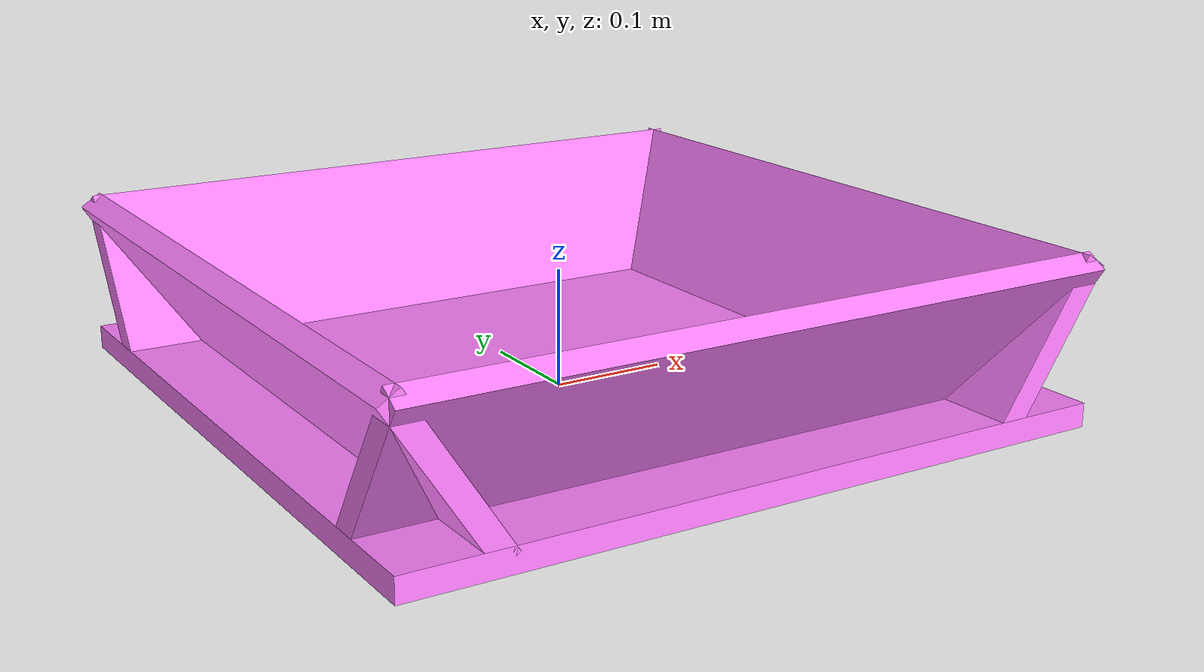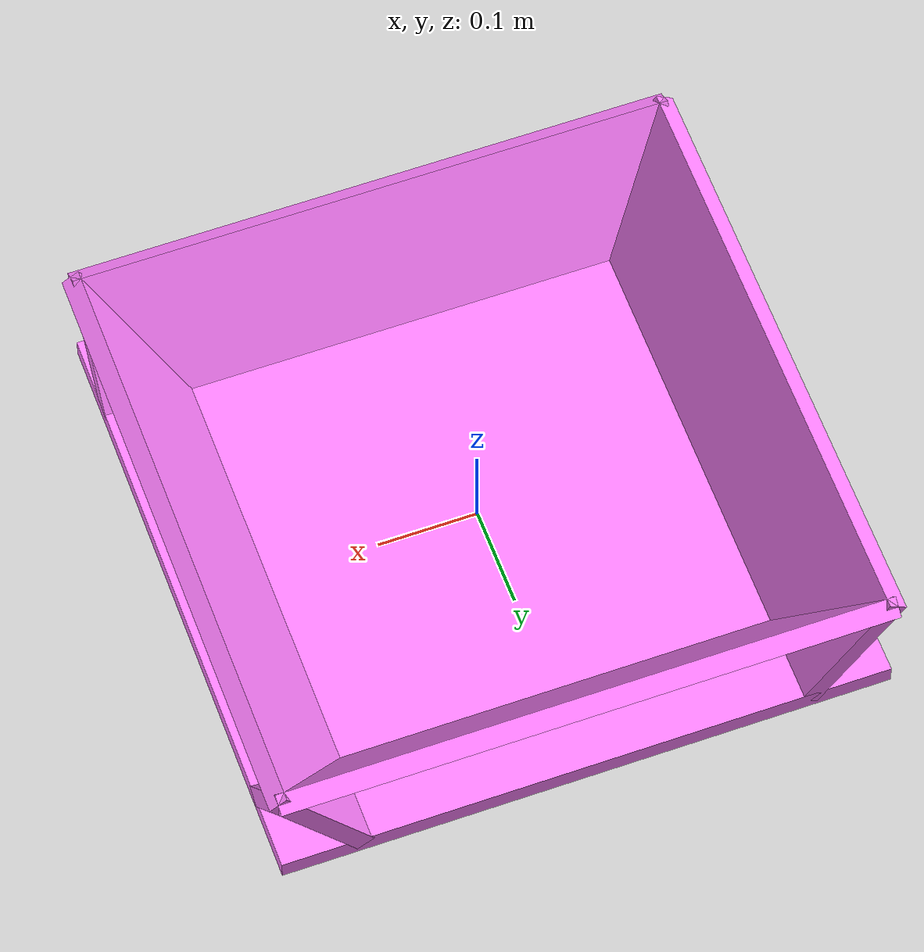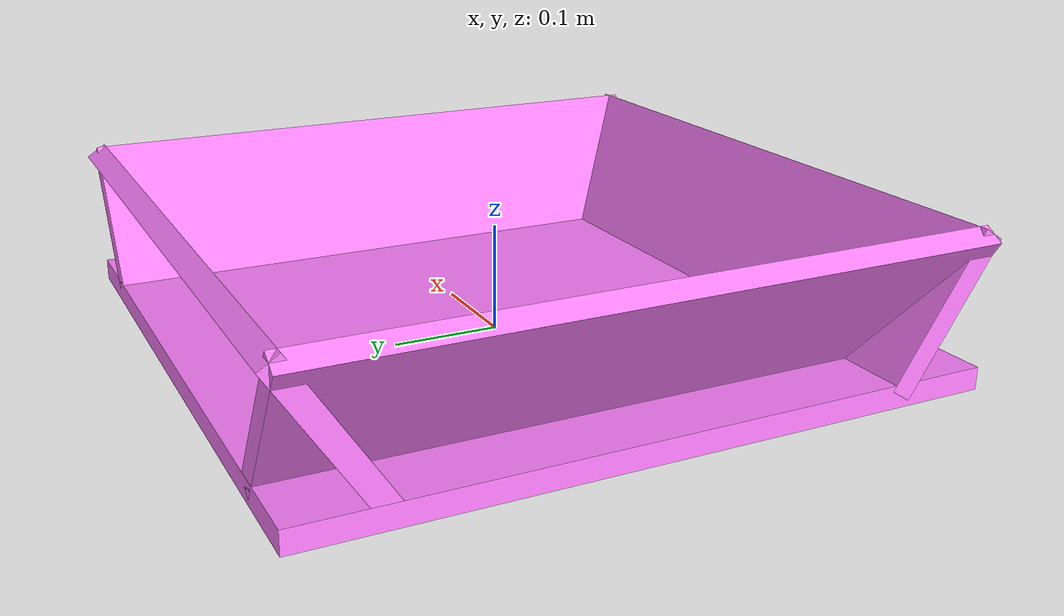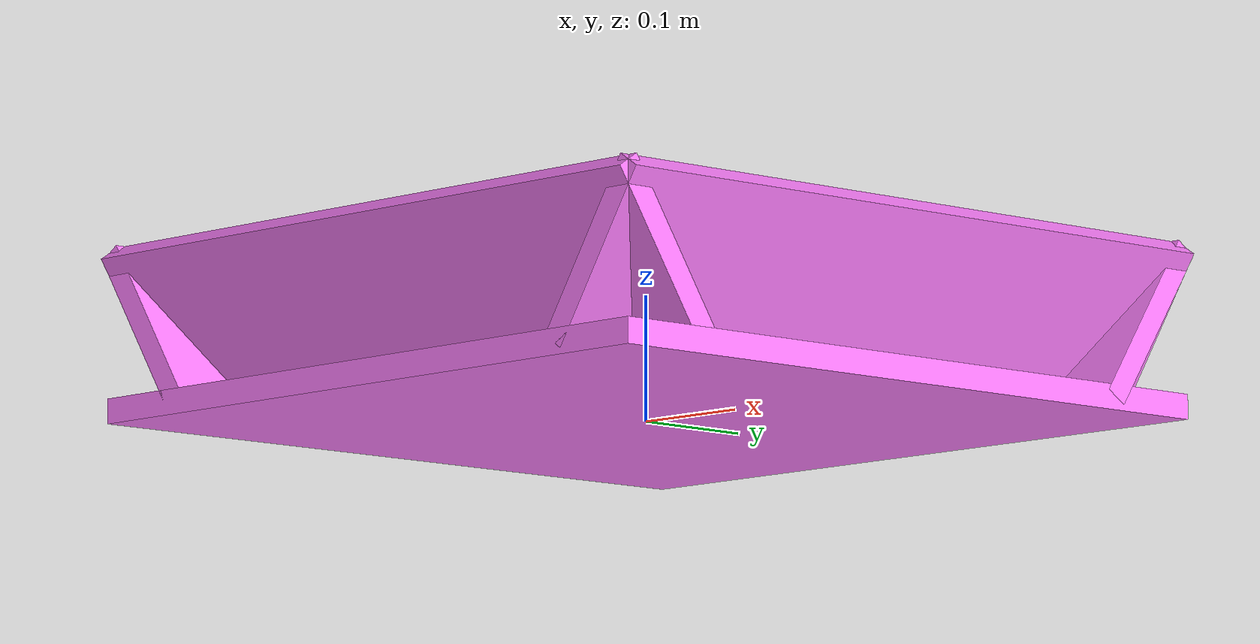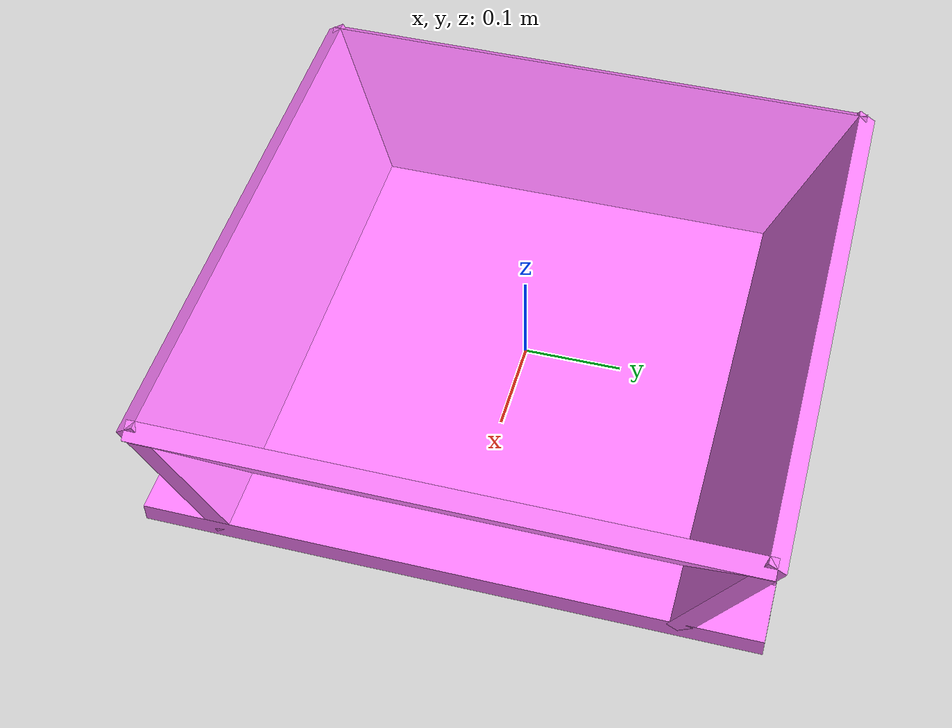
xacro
<?xml version="1.0" ?>
<!-- based on: traybox.urdf -->
<robot name="tray_test" xmlns:xacro="http://www.ros.org/wiki/xacro">
  <xacro:arg name="side_wall_angle" default="0.575469961" />
  <xacro:arg name="side_wall_w" default="0.6" />
  <xacro:arg name="side_wall_h" default="0.15" />
  <xacro:arg name="side_wall_th" default="0.02" />

  <xacro:property name="side_wall_angle" value="$(arg side_wall_angle)" />
  <xacro:property name="side_wall_w" value="$(arg side_wall_w)" />
  <xacro:property name="side_wall_h" value="$(arg side_wall_h)" />
  <xacro:property name="side_wall_th" value="$(arg side_wall_th)" />

  <xacro:property name="side_wall_xy" value="${0.5*side_wall_w-0.5*side_wall_h*sin(side_wall_angle)}" />
  <xacro:property name="side_wall_z" value="${0.5*side_wall_h*cos(side_wall_angle)+0.5*side_wall_th}" />

  <xacro:macro name="box_geom" params="xyz rpy size">
    <origin xyz="${xyz}" rpy="${rpy}"/>
    <geometry><box size="${size}"/></geometry>
  </xacro:macro>

  <xacro:macro name="add_box" params="xyz rpy size material">
    <visual>
      <xacro:box_geom xyz="${xyz}" rpy="${rpy}" size="${size}"/>
      <material name="${material}"/>
    </visual>
    <collision>
      <xacro:box_geom xyz="${xyz}" rpy="${rpy}" size="${size}"/>
    </collision>
  </xacro:macro>

  <material name="tray_material">
    <color rgba="1 0.5 1 1"/>
  </material>

  <link name="base_link">
    <inertial>
      <origin rpy="0 0 0" xyz="0 0 0"/>
      <mass value="0"/>
      <inertia ixx="0" ixy="0" ixz="0" iyy="0" iyz="0" izz="0"/>
    </inertial>

    <xacro:add_box rpy="0 0 0" xyz="0 0 ${0.5*side_wall_th}"
                   size="${side_wall_w} ${side_wall_w} ${side_wall_th}"
                   material="tray_material"/>
    <xacro:add_box rpy="0 ${side_wall_angle} 0" xyz="${side_wall_xy} 0 ${side_wall_z}"
                   size="${side_wall_th} ${side_wall_w} ${side_wall_h}"
                   material="tray_material"/>
    <xacro:add_box rpy="0 -${side_wall_angle} 0" xyz="-${side_wall_xy} 0 ${side_wall_z}"
                   size="${side_wall_th} ${side_wall_w} ${side_wall_h}"
                   material="tray_material"/>
    <xacro:add_box rpy="${side_wall_angle} 0 0" xyz="0 -${side_wall_xy} ${side_wall_z}"
                   size="${side_wall_w} ${side_wall_th} ${side_wall_h}"
                   material="tray_material"/>
    <xacro:add_box rpy="-${side_wall_angle} 0 0" xyz="0 ${side_wall_xy} ${side_wall_z}"
                   size="${side_wall_w} ${side_wall_th} ${side_wall_h}"
                   material="tray_material"/>

  </link>
</robot>
